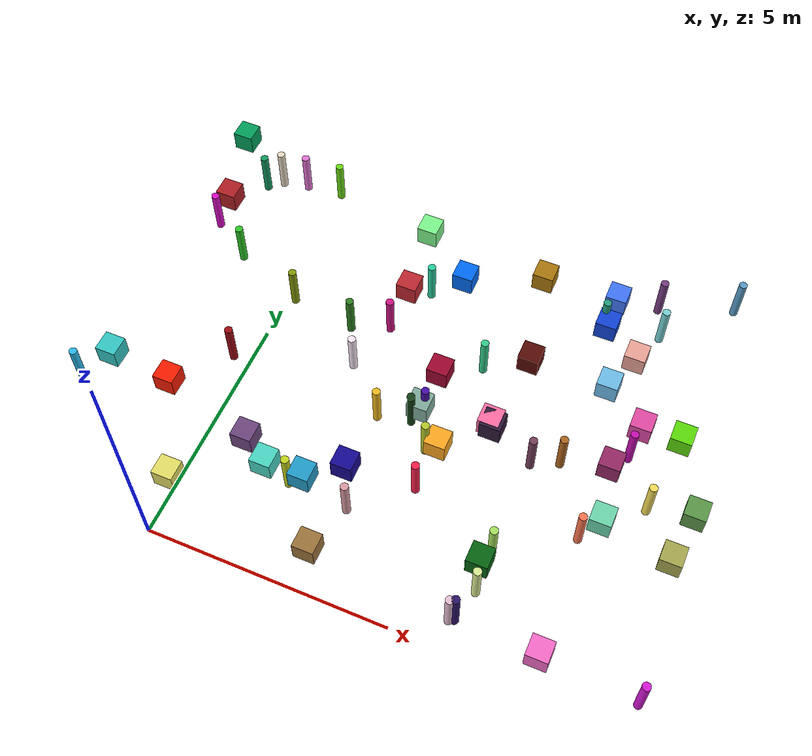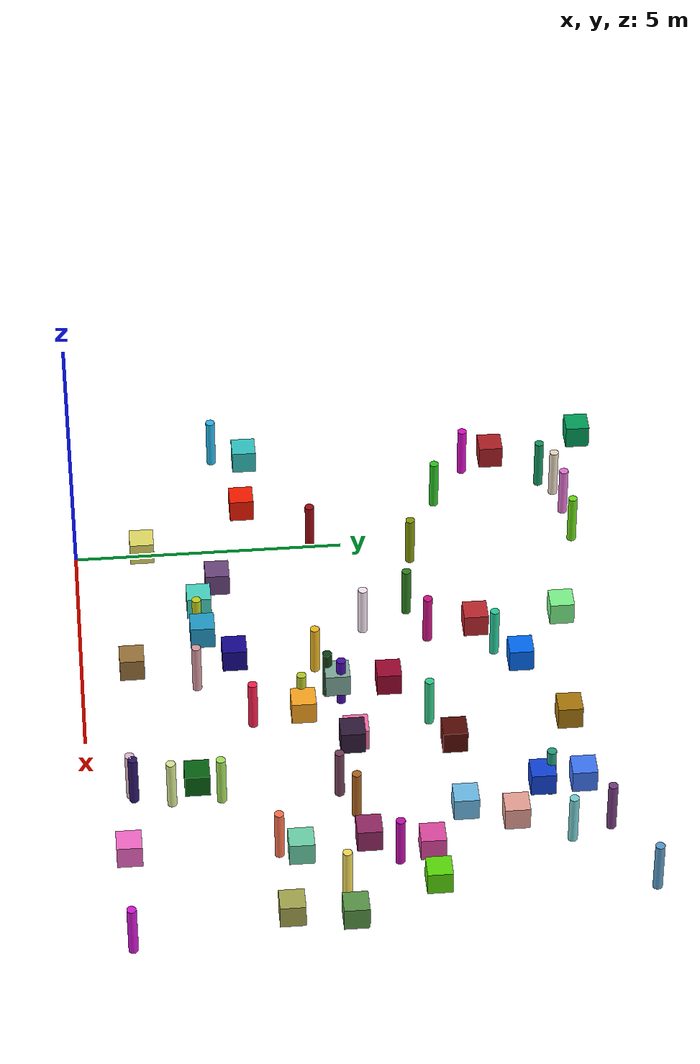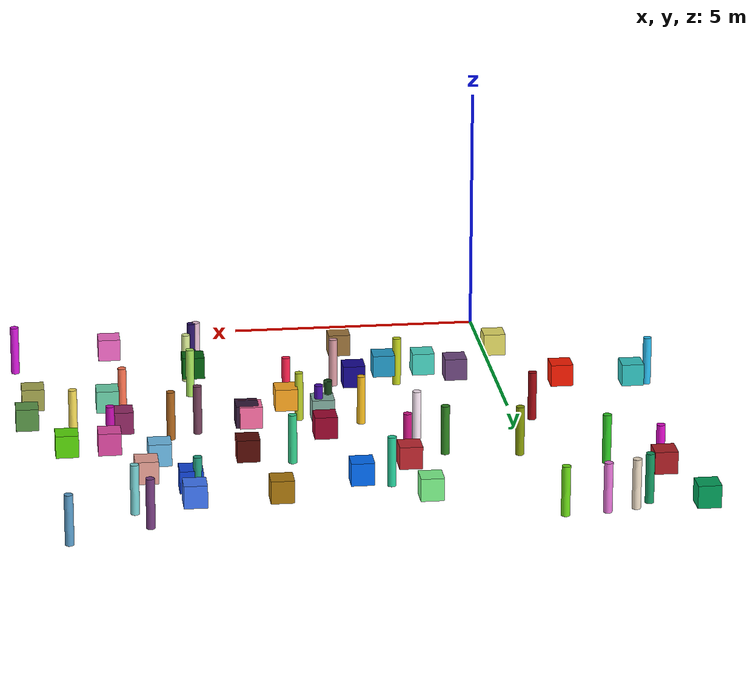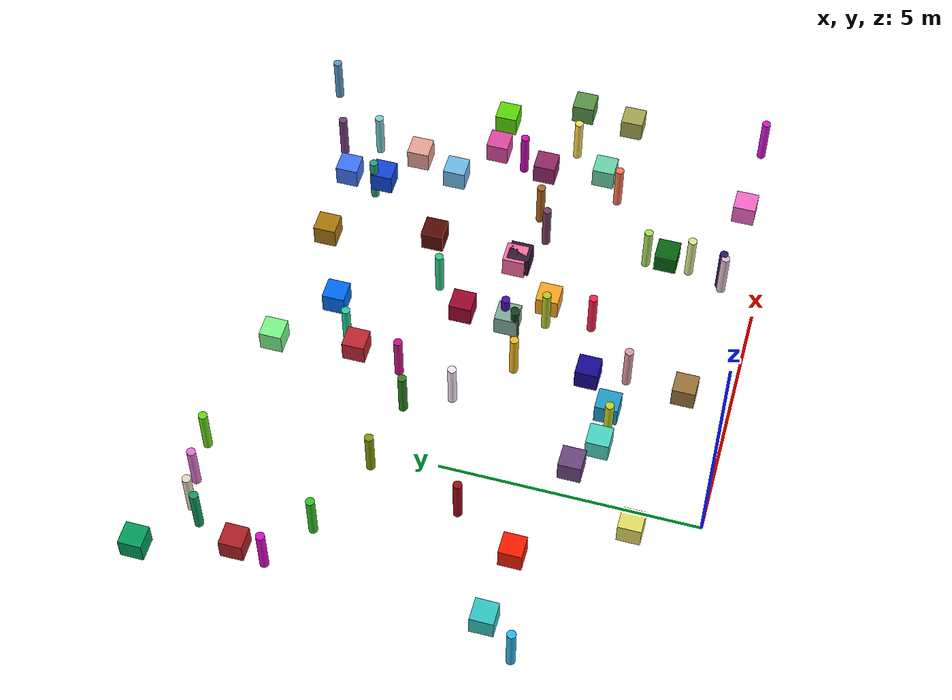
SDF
<sdf version="1.7">
 <world name="warehouse">
  <model name="ground_plane">
   <static>true</static>
   <link name="link">
    <collision name="collision">
     <geometry><plane><normal>0.0 0.0 1</normal><size>1 1</size></plane></geometry>
    </collision>
   </link>
  </model>
  <model name="unit_cylinder_0">
   <static>true</static>
   <pose>7.64 8.49 0 0 0 0</pose>
   <link name="link">
    <collision name="collision">
     <geometry><cylinder><radius>0.085000</radius><length>1.000000</length></cylinder></geometry>
    </collision>
    <visual name="visual">
     <geometry><cylinder><radius>0.085000</radius><length>1.000000</length></cylinder></geometry>
     <material>
      <ambient>0.46999343141526606 0.8260828982323868 0.8352996706723781 1</ambient>
      <diffuse>0.46999343141526606 0.8260828982323868 0.8352996706723781 1</diffuse>
      <script><uri>file://media/materials/scripts/gazebo.material</uri><name>Gazebo/RandomColor0</name></script>
     </material>
    </visual>
   </link>
  </model>
  <model name="unit_box_1">
   <static>true</static>
   <pose>7.68 4.87 0 0 0 0</pose>
   <link name="link">
    <collision name="collision">
     <geometry><box><size>0.450000 0.450000 0.450000</size></box></geometry>
    </collision>
    <visual name="visual">
     <geometry><box><size>0.450000 0.450000 0.450000</size></box></geometry>
     <material>
      <ambient>0.5787854574326788 0.1576126436969516 0.39572108881065005 1</ambient>
      <diffuse>0.5787854574326788 0.1576126436969516 0.39572108881065005 1</diffuse>
      <script><uri>file://media/materials/scripts/gazebo.material</uri><name>Gazebo/RandomColor1</name></script>
     </material>
    </visual>
   </link>
  </model>
  <model name="unit_cylinder_2">
   <static>true</static>
   <pose>7.58 3.3 0 0 0 0</pose>
   <link name="link">
    <collision name="collision">
     <geometry><cylinder><radius>0.085000</radius><length>1.000000</length></cylinder></geometry>
    </collision>
    <visual name="visual">
     <geometry><cylinder><radius>0.085000</radius><length>1.000000</length></cylinder></geometry>
     <material>
      <ambient>0.994603734721729 0.4599668836425649 0.32006689947135913 1</ambient>
      <diffuse>0.994603734721729 0.4599668836425649 0.32006689947135913 1</diffuse>
      <script><uri>file://media/materials/scripts/gazebo.material</uri><name>Gazebo/RandomColor2</name></script>
     </material>
    </visual>
   </link>
  </model>
  <model name="unit_cylinder_4">
   <static>true</static>
   <pose>-0.59 4.47 0 0 0 0</pose>
   <link name="link">
    <collision name="collision">
     <geometry><cylinder><radius>0.085000</radius><length>1.000000</length></cylinder></geometry>
    </collision>
    <visual name="visual">
     <geometry><cylinder><radius>0.085000</radius><length>1.000000</length></cylinder></geometry>
     <material>
      <ambient>0.6235357225068702 0.041976520675021445 0.07086196109194554 1</ambient>
      <diffuse>0.6235357225068702 0.041976520675021445 0.07086196109194554 1</diffuse>
      <script><uri>file://media/materials/scripts/gazebo.material</uri><name>Gazebo/RandomColor4</name></script>
     </material>
    </visual>
   </link>
  </model>
  <model name="unit_box_6">
   <static>true</static>
   <pose>7.36 7.51 0 0 0 0</pose>
   <link name="link">
    <collision name="collision">
     <geometry><box><size>0.450000 0.450000 0.450000</size></box></geometry>
    </collision>
    <visual name="visual">
     <geometry><box><size>0.450000 0.450000 0.450000</size></box></geometry>
     <material>
      <ambient>0.9200013658917384 0.6377764935082382 0.5884827738635453 1</ambient>
      <diffuse>0.9200013658917384 0.6377764935082382 0.5884827738635453 1</diffuse>
      <script><uri>file://media/materials/scripts/gazebo.material</uri><name>Gazebo/RandomColor6</name></script>
     </material>
    </visual>
   </link>
  </model>
  <model name="unit_box_7">
   <static>true</static>
   <pose>3.29 8.06 0 0 0 0</pose>
   <link name="link">
    <collision name="collision">
     <geometry><box><size>0.450000 0.450000 0.450000</size></box></geometry>
    </collision>
    <visual name="visual">
     <geometry><box><size>0.450000 0.450000 0.450000</size></box></geometry>
     <material>
      <ambient>0.0008061066065178091 0.4221810701152692 0.9668438875156476 1</ambient>
      <diffuse>0.0008061066065178091 0.4221810701152692 0.9668438875156476 1</diffuse>
      <script><uri>file://media/materials/scripts/gazebo.material</uri><name>Gazebo/RandomColor7</name></script>
     </material>
    </visual>
   </link>
  </model>
  <model name="unit_box_8">
   <static>true</static>
   <pose>-2.82 3.35 0 0 0 0</pose>
   <link name="link">
    <collision name="collision">
     <geometry><box><size>0.450000 0.450000 0.450000</size></box></geometry>
    </collision>
    <visual name="visual">
     <geometry><box><size>0.450000 0.450000 0.450000</size></box></geometry>
     <material>
      <ambient>0.19632608082391967 0.7800212030862693 0.7700812796265892 1</ambient>
      <diffuse>0.19632608082391967 0.7800212030862693 0.7700812796265892 1</diffuse>
      <script><uri>file://media/materials/scripts/gazebo.material</uri><name>Gazebo/RandomColor8</name></script>
     </material>
    </visual>
   </link>
  </model>
  <model name="unit_cylinder_8">
   <static>true</static>
   <pose>-2.58 7.6 0 0 0 0</pose>
   <link name="link">
    <collision name="collision">
     <geometry><cylinder><radius>0.085000</radius><length>1.000000</length></cylinder></geometry>
    </collision>
    <visual name="visual">
     <geometry><cylinder><radius>0.085000</radius><length>1.000000</length></cylinder></geometry>
     <material>
      <ambient>0.8731148797888116 0.05048151335118567 0.7935635113024313 1</ambient>
      <diffuse>0.8731148797888116 0.05048151335118567 0.7935635113024313 1</diffuse>
      <script><uri>file://media/materials/scripts/gazebo.material</uri><name>Gazebo/RandomColor8</name></script>
     </material>
    </visual>
   </link>
  </model>
  <model name="unit_box_9">
   <static>true</static>
   <pose>6.55 8.07 0 0 0 0</pose>
   <link name="link">
    <collision name="collision">
     <geometry><box><size>0.450000 0.450000 0.450000</size></box></geometry>
    </collision>
    <visual name="visual">
     <geometry><box><size>0.450000 0.450000 0.450000</size></box></geometry>
     <material>
      <ambient>0.06638551337313603 0.2678031365858804 0.8557967761337132 1</ambient>
      <diffuse>0.06638551337313603 0.2678031365858804 0.8557967761337132 1</diffuse>
      <script><uri>file://media/materials/scripts/gazebo.material</uri><name>Gazebo/RandomColor9</name></script>
     </material>
    </visual>
   </link>
  </model>
  <model name="unit_cylinder_12">
   <static>true</static>
   <pose>2.66 7.65 0 0 0 0</pose>
   <link name="link">
    <collision name="collision">
     <geometry><cylinder><radius>0.085000</radius><length>1.000000</length></cylinder></geometry>
    </collision>
    <visual name="visual">
     <geometry><cylinder><radius>0.085000</radius><length>1.000000</length></cylinder></geometry>
     <material>
      <ambient>0.15143648891922623 0.8175906025052687 0.6141172141436677 1</ambient>
      <diffuse>0.15143648891922623 0.8175906025052687 0.6141172141436677 1</diffuse>
      <script><uri>file://media/materials/scripts/gazebo.material</uri><name>Gazebo/RandomColor12</name></script>
     </material>
    </visual>
   </link>
  </model>
  <model name="unit_cylinder_14">
   <static>true</static>
   <pose>-3.27 2.74 0 0 0 0</pose>
   <link name="link">
    <collision name="collision">
     <geometry><cylinder><radius>0.085000</radius><length>1.000000</length></cylinder></geometry>
    </collision>
    <visual name="visual">
     <geometry><cylinder><radius>0.085000</radius><length>1.000000</length></cylinder></geometry>
     <material>
      <ambient>0.1616640995869777 0.7356496990827222 0.9365464673181627 1</ambient>
      <diffuse>0.1616640995869777 0.7356496990827222 0.9365464673181627 1</diffuse>
      <script><uri>file://media/materials/scripts/gazebo.material</uri><name>Gazebo/RandomColor14</name></script>
     </material>
    </visual>
   </link>
  </model>
  <model name="unit_box_15">
   <static>true</static>
   <pose>-1.38 3.21 0 0 0 0</pose>
   <link name="link">
    <collision name="collision">
     <geometry><box><size>0.450000 0.450000 0.450000</size></box></geometry>
    </collision>
    <visual name="visual">
     <geometry><box><size>0.450000 0.450000 0.450000</size></box></geometry>
     <material>
      <ambient>0.9789827987215421 0.10518219629356829 0.00033992939039728665 1</ambient>
      <diffuse>0.9789827987215421 0.10518219629356829 0.00033992939039728665 1</diffuse>
      <script><uri>file://media/materials/scripts/gazebo.material</uri><name>Gazebo/RandomColor15</name></script>
     </material>
    </visual>
   </link>
  </model>
  <model name="unit_cylinder_15">
   <static>true</static>
   <pose>5.9 0.76 0 0 0 0</pose>
   <link name="link">
    <collision name="collision">
     <geometry><cylinder><radius>0.085000</radius><length>1.000000</length></cylinder></geometry>
    </collision>
    <visual name="visual">
     <geometry><cylinder><radius>0.085000</radius><length>1.000000</length></cylinder></geometry>
     <material>
      <ambient>0.9063739285020391 0.7514042748669589 0.838011728663642 1</ambient>
      <diffuse>0.9063739285020391 0.7514042748669589 0.838011728663642 1</diffuse>
      <script><uri>file://media/materials/scripts/gazebo.material</uri><name>Gazebo/RandomColor15</name></script>
     </material>
    </visual>
   </link>
  </model>
  <model name="unit_cylinder_16">
   <static>true</static>
   <pose>6.15 4.48 0 0 0 0</pose>
   <link name="link">
    <collision name="collision">
     <geometry><cylinder><radius>0.085000</radius><length>1.000000</length></cylinder></geometry>
    </collision>
    <visual name="visual">
     <geometry><cylinder><radius>0.085000</radius><length>1.000000</length></cylinder></geometry>
     <material>
      <ambient>0.4622271195110065 0.2528442664038917 0.36049144175780334 1</ambient>
      <diffuse>0.4622271195110065 0.2528442664038917 0.36049144175780334 1</diffuse>
      <script><uri>file://media/materials/scripts/gazebo.material</uri><name>Gazebo/RandomColor16</name></script>
     </material>
    </visual>
   </link>
  </model>
  <model name="unit_box_18">
   <static>true</static>
   <pose>7.71 0.66 0 0 0 0</pose>
   <link name="link">
    <collision name="collision">
     <geometry><box><size>0.450000 0.450000 0.450000</size></box></geometry>
    </collision>
    <visual name="visual">
     <geometry><box><size>0.450000 0.450000 0.450000</size></box></geometry>
     <material>
      <ambient>0.9665622435585168 0.41716344496851265 0.789984054476536 1</ambient>
      <diffuse>0.9665622435585168 0.41716344496851265 0.789984054476536 1</diffuse>
      <script><uri>file://media/materials/scripts/gazebo.material</uri><name>Gazebo/RandomColor18</name></script>
     </material>
    </visual>
   </link>
  </model>
  <model name="unit_box_19">
   <static>true</static>
   <pose>-3.02 9.9 0 0 0 0</pose>
   <link name="link">
    <collision name="collision">
     <geometry><box><size>0.450000 0.450000 0.450000</size></box></geometry>
    </collision>
    <visual name="visual">
     <geometry><box><size>0.450000 0.450000 0.450000</size></box></geometry>
     <material>
      <ambient>0.004717150632328471 0.6250235168678344 0.3515729885520935 1</ambient>
      <diffuse>0.004717150632328471 0.6250235168678344 0.3515729885520935 1</diffuse>
      <script><uri>file://media/materials/scripts/gazebo.material</uri><name>Gazebo/RandomColor19</name></script>
     </material>
    </visual>
   </link>
  </model>
  <model name="unit_cylinder_19">
   <static>true</static>
   <pose>-2.09 9.05 0 0 0 0</pose>
   <link name="link">
    <collision name="collision">
     <geometry><cylinder><radius>0.085000</radius><length>1.000000</length></cylinder></geometry>
    </collision>
    <visual name="visual">
     <geometry><cylinder><radius>0.085000</radius><length>1.000000</length></cylinder></geometry>
     <material>
      <ambient>0.07983190309297217 0.6005276894350505 0.38091359060201324 1</ambient>
      <diffuse>0.07983190309297217 0.6005276894350505 0.38091359060201324 1</diffuse>
      <script><uri>file://media/materials/scripts/gazebo.material</uri><name>Gazebo/RandomColor19</name></script>
     </material>
    </visual>
   </link>
  </model>
  <model name="unit_cylinder_25">
   <static>true</static>
   <pose>1.86 5.27 0 0 0 0</pose>
   <link name="link">
    <collision name="collision">
     <geometry><cylinder><radius>0.085000</radius><length>1.000000</length></cylinder></geometry>
    </collision>
    <visual name="visual">
     <geometry><cylinder><radius>0.085000</radius><length>1.000000</length></cylinder></geometry>
     <material>
      <ambient>0.9913016831416743 0.9147238388366419 0.9715623505247444 1</ambient>
      <diffuse>0.9913016831416743 0.9147238388366419 0.9715623505247444 1</diffuse>
      <script><uri>file://media/materials/scripts/gazebo.material</uri><name>Gazebo/RandomColor25</name></script>
     </material>
    </visual>
   </link>
  </model>
  <model name="unit_cylinder_27">
   <static>true</static>
   <pose>2.2 6.45 0 0 0 0</pose>
   <link name="link">
    <collision name="collision">
     <geometry><cylinder><radius>0.085000</radius><length>1.000000</length></cylinder></geometry>
    </collision>
    <visual name="visual">
     <geometry><cylinder><radius>0.085000</radius><length>1.000000</length></cylinder></geometry>
     <material>
      <ambient>0.81939416577591 0.07705422698556097 0.5250067758038443 1</ambient>
      <diffuse>0.81939416577591 0.07705422698556097 0.5250067758038443 1</diffuse>
      <script><uri>file://media/materials/scripts/gazebo.material</uri><name>Gazebo/RandomColor27</name></script>
     </material>
    </visual>
   </link>
  </model>
  <model name="unit_box_28">
   <static>true</static>
   <pose>5.13 4.86 0 0 0 0</pose>
   <link name="link">
    <collision name="collision">
     <geometry><box><size>0.450000 0.450000 0.450000</size></box></geometry>
    </collision>
    <visual name="visual">
     <geometry><box><size>0.450000 0.450000 0.450000</size></box></geometry>
     <material>
      <ambient>0.9924946270400862 0.43210663244322833 0.649208655191276 1</ambient>
      <diffuse>0.9924946270400862 0.43210663244322833 0.649208655191276 1</diffuse>
      <script><uri>file://media/materials/scripts/gazebo.material</uri><name>Gazebo/RandomColor28</name></script>
     </material>
    </visual>
   </link>
  </model>
  <model name="unit_box_31">
   <static>true</static>
   <pose>-0.29 1.25 0 0 0 0</pose>
   <link name="link">
    <collision name="collision">
     <geometry><box><size>0.450000 0.450000 0.450000</size></box></geometry>
    </collision>
    <visual name="visual">
     <geometry><box><size>0.450000 0.450000 0.450000</size></box></geometry>
     <material>
      <ambient>0.903097803572667 0.872289222738463 0.39441704418277024 1</ambient>
      <diffuse>0.903097803572667 0.872289222738463 0.39441704418277024 1</diffuse>
      <script><uri>file://media/materials/scripts/gazebo.material</uri><name>Gazebo/RandomColor31</name></script>
     </material>
    </visual>
   </link>
  </model>
  <model name="unit_box_32">
   <static>true</static>
   <pose>3.72 5.58 0 0 0 0</pose>
   <link name="link">
    <collision name="collision">
     <geometry><box><size>0.450000 0.450000 0.450000</size></box></geometry>
    </collision>
    <visual name="visual">
     <geometry><box><size>0.450000 0.450000 0.450000</size></box></geometry>
     <material>
      <ambient>0.6157356252464026 0.023215326455299667 0.17916997867900675 1</ambient>
      <diffuse>0.6157356252464026 0.023215326455299667 0.17916997867900675 1</diffuse>
      <script><uri>file://media/materials/scripts/gazebo.material</uri><name>Gazebo/RandomColor32</name></script>
     </material>
    </visual>
   </link>
  </model>
  <model name="unit_cylinder_32">
   <static>true</static>
   <pose>2.85 4.3 0 0 0 0</pose>
   <link name="link">
    <collision name="collision">
     <geometry><cylinder><radius>0.085000</radius><length>1.000000</length></cylinder></geometry>
    </collision>
    <visual name="visual">
     <geometry><cylinder><radius>0.085000</radius><length>1.000000</length></cylinder></geometry>
     <material>
      <ambient>0.9521239968349163 0.7320744994341732 0.11916655202725757 1</ambient>
      <diffuse>0.9521239968349163 0.7320744994341732 0.11916655202725757 1</diffuse>
      <script><uri>file://media/materials/scripts/gazebo.material</uri><name>Gazebo/RandomColor32</name></script>
     </material>
    </visual>
   </link>
  </model>
  <model name="unit_cylinder_35">
   <static>true</static>
   <pose>6.16 1.48 0 0 0 0</pose>
   <link name="link">
    <collision name="collision">
     <geometry><cylinder><radius>0.085000</radius><length>1.000000</length></cylinder></geometry>
    </collision>
    <visual name="visual">
     <geometry><cylinder><radius>0.085000</radius><length>1.000000</length></cylinder></geometry>
     <material>
      <ambient>0.8573273535878304 0.9273874737908594 0.5826339409645794 1</ambient>
      <diffuse>0.8573273535878304 0.9273874737908594 0.5826339409645794 1</diffuse>
      <script><uri>file://media/materials/scripts/gazebo.material</uri><name>Gazebo/RandomColor35</name></script>
     </material>
    </visual>
   </link>
  </model>
  <model name="unit_cylinder_36">
   <static>true</static>
   <pose>1.86 2.18 0 0 0 0</pose>
   <link name="link">
    <collision name="collision">
     <geometry><cylinder><radius>0.085000</radius><length>1.000000</length></cylinder></geometry>
    </collision>
    <visual name="visual">
     <geometry><cylinder><radius>0.085000</radius><length>1.000000</length></cylinder></geometry>
     <material>
      <ambient>0.7715019080482511 0.8372282749579514 0.11446092613466696 1</ambient>
      <diffuse>0.7715019080482511 0.8372282749579514 0.11446092613466696 1</diffuse>
      <script><uri>file://media/materials/scripts/gazebo.material</uri><name>Gazebo/RandomColor36</name></script>
     </material>
    </visual>
   </link>
  </model>
  <model name="unit_box_39">
   <static>true</static>
   <pose>7.05 6.64 0 0 0 0</pose>
   <link name="link">
    <collision name="collision">
     <geometry><box><size>0.450000 0.450000 0.450000</size></box></geometry>
    </collision>
    <visual name="visual">
     <geometry><box><size>0.450000 0.450000 0.450000</size></box></geometry>
     <material>
      <ambient>0.43041689157387963 0.740574233110822 0.9175106958173416 1</ambient>
      <diffuse>0.43041689157387963 0.740574233110822 0.9175106958173416 1</diffuse>
      <script><uri>file://media/materials/scripts/gazebo.material</uri><name>Gazebo/RandomColor39</name></script>
     </material>
    </visual>
   </link>
  </model>
  <model name="unit_cylinder_39">
   <static>true</static>
   <pose>9.66 0.63 0 0 0 0</pose>
   <link name="link">
    <collision name="collision">
     <geometry><cylinder><radius>0.085000</radius><length>1.000000</length></cylinder></geometry>
    </collision>
    <visual name="visual">
     <geometry><cylinder><radius>0.085000</radius><length>1.000000</length></cylinder></geometry>
     <material>
      <ambient>0.8421057203004303 0.09712622279821559 0.8561255720082507 1</ambient>
      <diffuse>0.8421057203004303 0.09712622279821559 0.8561255720082507 1</diffuse>
      <script><uri>file://media/materials/scripts/gazebo.material</uri><name>Gazebo/RandomColor39</name></script>
     </material>
    </visual>
   </link>
  </model>
  <model name="unit_box_40">
   <static>true</static>
   <pose>8.81 5.99 0 0 0 0</pose>
   <link name="link">
    <collision name="collision">
     <geometry><box><size>0.450000 0.450000 0.450000</size></box></geometry>
    </collision>
    <visual name="visual">
     <geometry><box><size>0.450000 0.450000 0.450000</size></box></geometry>
     <material>
      <ambient>0.35340262437832104 0.8570995377256371 0.03485788274739676 1</ambient>
      <diffuse>0.35340262437832104 0.8570995377256371 0.03485788274739676 1</diffuse>
      <script><uri>file://media/materials/scripts/gazebo.material</uri><name>Gazebo/RandomColor40</name></script>
     </material>
    </visual>
   </link>
  </model>
  <model name="unit_box_41">
   <static>true</static>
   <pose>2.93 0.92 0 0 0 0</pose>
   <link name="link">
    <collision name="collision">
     <geometry><box><size>0.450000 0.450000 0.450000</size></box></geometry>
    </collision>
    <visual name="visual">
     <geometry><box><size>0.450000 0.450000 0.450000</size></box></geometry>
     <material>
      <ambient>0.6125183021814501 0.45390889046797667 0.23062278917861345 1</ambient>
      <diffuse>0.6125183021814501 0.45390889046797667 0.23062278917861345 1</diffuse>
      <script><uri>file://media/materials/scripts/gazebo.material</uri><name>Gazebo/RandomColor41</name></script>
     </material>
    </visual>
   </link>
  </model>
  <model name="unit_cylinder_41">
   <static>true</static>
   <pose>4.43 6.26 0 0 0 0</pose>
   <link name="link">
    <collision name="collision">
     <geometry><cylinder><radius>0.085000</radius><length>1.000000</length></cylinder></geometry>
    </collision>
    <visual name="visual">
     <geometry><cylinder><radius>0.085000</radius><length>1.000000</length></cylinder></geometry>
     <material>
      <ambient>0.20337211083979623 0.8062757376106867 0.54790493930172 1</ambient>
      <diffuse>0.20337211083979623 0.8062757376106867 0.54790493930172 1</diffuse>
      <script><uri>file://media/materials/scripts/gazebo.material</uri><name>Gazebo/RandomColor41</name></script>
     </material>
    </visual>
   </link>
  </model>
  <model name="unit_box_44">
   <static>true</static>
   <pose>4.34 3.97 0 0 0 0</pose>
   <link name="link">
    <collision name="collision">
     <geometry><box><size>0.450000 0.450000 0.450000</size></box></geometry>
    </collision>
    <visual name="visual">
     <geometry><box><size>0.450000 0.450000 0.450000</size></box></geometry>
     <material>
      <ambient>0.9938810974071471 0.6578962700450941 0.12727185080217418 1</ambient>
      <diffuse>0.9938810974071471 0.6578962700450941 0.12727185080217418 1</diffuse>
      <script><uri>file://media/materials/scripts/gazebo.material</uri><name>Gazebo/RandomColor44</name></script>
     </material>
    </visual>
   </link>
  </model>
  <model name="unit_cylinder_45">
   <static>true</static>
   <pose>4.07 3.96 0 0 0 0</pose>
   <link name="link">
    <collision name="collision">
     <geometry><cylinder><radius>0.085000</radius><length>1.000000</length></cylinder></geometry>
    </collision>
    <visual name="visual">
     <geometry><cylinder><radius>0.085000</radius><length>1.000000</length></cylinder></geometry>
     <material>
      <ambient>0.7260579137272414 0.7986161869372315 0.15849874689629084 1</ambient>
      <diffuse>0.7260579137272414 0.7986161869372315 0.15849874689629084 1</diffuse>
      <script><uri>file://media/materials/scripts/gazebo.material</uri><name>Gazebo/RandomColor45</name></script>
     </material>
    </visual>
   </link>
  </model>
  <model name="unit_cylinder_46">
   <static>true</static>
   <pose>6.14 2.37 0 0 0 0</pose>
   <link name="link">
    <collision name="collision">
     <geometry><cylinder><radius>0.085000</radius><length>1.000000</length></cylinder></geometry>
    </collision>
    <visual name="visual">
     <geometry><cylinder><radius>0.085000</radius><length>1.000000</length></cylinder></geometry>
     <material>
      <ambient>0.6554024750289498 0.8946992152742206 0.3615197141175006 1</ambient>
      <diffuse>0.6554024750289498 0.8946992152742206 0.3615197141175006 1</diffuse>
      <script><uri>file://media/materials/scripts/gazebo.material</uri><name>Gazebo/RandomColor46</name></script>
     </material>
    </visual>
   </link>
  </model>
  <model name="unit_box_47">
   <static>true</static>
   <pose>4.89 8.76 0 0 0 0</pose>
   <link name="link">
    <collision name="collision">
     <geometry><box><size>0.450000 0.450000 0.450000</size></box></geometry>
    </collision>
    <visual name="visual">
     <geometry><box><size>0.450000 0.450000 0.450000</size></box></geometry>
     <material>
      <ambient>0.6725950946140186 0.4716992408723011 0.04879351248057717 1</ambient>
      <diffuse>0.6725950946140186 0.4716992408723011 0.04879351248057717 1</diffuse>
      <script><uri>file://media/materials/scripts/gazebo.material</uri><name>Gazebo/RandomColor47</name></script>
     </material>
    </visual>
   </link>
  </model>
  <model name="unit_cylinder_47">
   <static>true</static>
   <pose>8.93 9.82 0 0 0 0</pose>
   <link name="link">
    <collision name="collision">
     <geometry><cylinder><radius>0.085000</radius><length>1.000000</length></cylinder></geometry>
    </collision>
    <visual name="visual">
     <geometry><cylinder><radius>0.085000</radius><length>1.000000</length></cylinder></geometry>
     <material>
      <ambient>0.35371907494639687 0.616936816883898 0.7911689863771137 1</ambient>
      <diffuse>0.35371907494639687 0.616936816883898 0.7911689863771137 1</diffuse>
      <script><uri>file://media/materials/scripts/gazebo.material</uri><name>Gazebo/RandomColor47</name></script>
     </material>
    </visual>
   </link>
  </model>
  <model name="unit_box_48">
   <static>true</static>
   <pose>-2.55 8.14 0 0 0 0</pose>
   <link name="link">
    <collision name="collision">
     <geometry><box><size>0.450000 0.450000 0.450000</size></box></geometry>
    </collision>
    <visual name="visual">
     <geometry><box><size>0.450000 0.450000 0.450000</size></box></geometry>
     <material>
      <ambient>0.6880975314106589 0.11872456370108564 0.14438640145275317 1</ambient>
      <diffuse>0.6880975314106589 0.11872456370108564 0.14438640145275317 1</diffuse>
      <script><uri>file://media/materials/scripts/gazebo.material</uri><name>Gazebo/RandomColor48</name></script>
     </material>
    </visual>
   </link>
  </model>
  <model name="unit_box_51">
   <static>true</static>
   <pose>3.67 4.64 0 0 0 0</pose>
   <link name="link">
    <collision name="collision">
     <geometry><box><size>0.450000 0.450000 0.450000</size></box></geometry>
    </collision>
    <visual name="visual">
     <geometry><box><size>0.450000 0.450000 0.450000</size></box></geometry>
     <material>
      <ambient>0.5051263716753369 0.6781182307095606 0.6186056607038337 1</ambient>
      <diffuse>0.5051263716753369 0.6781182307095606 0.6186056607038337 1</diffuse>
      <script><uri>file://media/materials/scripts/gazebo.material</uri><name>Gazebo/RandomColor51</name></script>
     </material>
    </visual>
   </link>
  </model>
  <model name="unit_cylinder_51">
   <static>true</static>
   <pose>8.62 4.41 0 0 0 0</pose>
   <link name="link">
    <collision name="collision">
     <geometry><cylinder><radius>0.085000</radius><length>1.000000</length></cylinder></geometry>
    </collision>
    <visual name="visual">
     <geometry><cylinder><radius>0.085000</radius><length>1.000000</length></cylinder></geometry>
     <material>
      <ambient>0.9644343755918187 0.866007959125253 0.3455983508901731 1</ambient>
      <diffuse>0.9644343755918187 0.866007959125253 0.3455983508901731 1</diffuse>
      <script><uri>file://media/materials/scripts/gazebo.material</uri><name>Gazebo/RandomColor51</name></script>
     </material>
    </visual>
   </link>
  </model>
  <model name="unit_cylinder_52">
   <static>true</static>
   <pose>7.39 9.21 0 0 0 0</pose>
   <link name="link">
    <collision name="collision">
     <geometry><cylinder><radius>0.085000</radius><length>1.000000</length></cylinder></geometry>
    </collision>
    <visual name="visual">
     <geometry><cylinder><radius>0.085000</radius><length>1.000000</length></cylinder></geometry>
     <material>
      <ambient>0.4671992997125657 0.23824386028901645 0.5050991100475837 1</ambient>
      <diffuse>0.4671992997125657 0.23824386028901645 0.5050991100475837 1</diffuse>
      <script><uri>file://media/materials/scripts/gazebo.material</uri><name>Gazebo/RandomColor52</name></script>
     </material>
    </visual>
   </link>
  </model>
  <model name="unit_box_54">
   <static>true</static>
   <pose>2.84 2.81 0 0 0 0</pose>
   <link name="link">
    <collision name="collision">
     <geometry><box><size>0.450000 0.450000 0.450000</size></box></geometry>
    </collision>
    <visual name="visual">
     <geometry><box><size>0.450000 0.450000 0.450000</size></box></geometry>
     <material>
      <ambient>0.08465337009974994 0.029762546373700793 0.5687786597065388 1</ambient>
      <diffuse>0.08465337009974994 0.029762546373700793 0.5687786597065388 1</diffuse>
      <script><uri>file://media/materials/scripts/gazebo.material</uri><name>Gazebo/RandomColor54</name></script>
     </material>
    </visual>
   </link>
  </model>
  <model name="unit_box_55">
   <static>true</static>
   <pose>9.38 3.39 0 0 0 0</pose>
   <link name="link">
    <collision name="collision">
     <geometry><box><size>0.450000 0.450000 0.450000</size></box></geometry>
    </collision>
    <visual name="visual">
     <geometry><box><size>0.450000 0.450000 0.450000</size></box></geometry>
     <material>
      <ambient>0.6527666301359926 0.6561567484078137 0.30914424413899944 1</ambient>
      <diffuse>0.6527666301359926 0.6561567484078137 0.30914424413899944 1</diffuse>
      <script><uri>file://media/materials/scripts/gazebo.material</uri><name>Gazebo/RandomColor55</name></script>
     </material>
    </visual>
   </link>
  </model>
  <model name="unit_cylinder_55">
   <static>true</static>
   <pose>6.7 4.74 0 0 0 0</pose>
   <link name="link">
    <collision name="collision">
     <geometry><cylinder><radius>0.085000</radius><length>1.000000</length></cylinder></geometry>
    </collision>
    <visual name="visual">
     <geometry><cylinder><radius>0.085000</radius><length>1.000000</length></cylinder></geometry>
     <material>
      <ambient>0.6897535065462764 0.40196640105802306 0.11778696926784038 1</ambient>
      <diffuse>0.6897535065462764 0.40196640105802306 0.11778696926784038 1</diffuse>
      <script><uri>file://media/materials/scripts/gazebo.material</uri><name>Gazebo/RandomColor55</name></script>
     </material>
    </visual>
   </link>
  </model>
  <model name="unit_box_58">
   <static>true</static>
   <pose>6.05 1.94 0 0 0 0</pose>
   <link name="link">
    <collision name="collision">
     <geometry><box><size>0.450000 0.450000 0.450000</size></box></geometry>
    </collision>
    <visual name="visual">
     <geometry><box><size>0.450000 0.450000 0.450000</size></box></geometry>
     <material>
      <ambient>0.021729052193615206 0.39225309724229884 0.06524202127787637 1</ambient>
      <diffuse>0.021729052193615206 0.39225309724229884 0.06524202127787637 1</diffuse>
      <script><uri>file://media/materials/scripts/gazebo.material</uri><name>Gazebo/RandomColor58</name></script>
     </material>
    </visual>
   </link>
  </model>
  <model name="unit_cylinder_58">
   <static>true</static>
   <pose>-0.04 6.34 0 0 0 0</pose>
   <link name="link">
    <collision name="collision">
     <geometry><cylinder><radius>0.085000</radius><length>1.000000</length></cylinder></geometry>
    </collision>
    <visual name="visual">
     <geometry><cylinder><radius>0.085000</radius><length>1.000000</length></cylinder></geometry>
     <material>
      <ambient>0.5272082868079613 0.6034765165581214 0.0359210006849815 1</ambient>
      <diffuse>0.5272082868079613 0.6034765165581214 0.0359210006849815 1</diffuse>
      <script><uri>file://media/materials/scripts/gazebo.material</uri><name>Gazebo/RandomColor58</name></script>
     </material>
    </visual>
   </link>
  </model>
  <model name="unit_box_59">
   <static>true</static>
   <pose>7.98 5.96 0 0 0 0</pose>
   <link name="link">
    <collision name="collision">
     <geometry><box><size>0.450000 0.450000 0.450000</size></box></geometry>
    </collision>
    <visual name="visual">
     <geometry><box><size>0.450000 0.450000 0.450000</size></box></geometry>
     <material>
      <ambient>0.8821894445095979 0.2850782038392836 0.6410121074538468 1</ambient>
      <diffuse>0.8821894445095979 0.2850782038392836 0.6410121074538468 1</diffuse>
      <script><uri>file://media/materials/scripts/gazebo.material</uri><name>Gazebo/RandomColor59</name></script>
     </material>
    </visual>
   </link>
  </model>
  <model name="unit_box_60">
   <static>true</static>
   <pose>7.9 3.66 0 0 0 0</pose>
   <link name="link">
    <collision name="collision">
     <geometry><box><size>0.450000 0.450000 0.450000</size></box></geometry>
    </collision>
    <visual name="visual">
     <geometry><box><size>0.450000 0.450000 0.450000</size></box></geometry>
     <material>
      <ambient>0.42269993102790715 0.8356011854969039 0.673584842058439 1</ambient>
      <diffuse>0.42269993102790715 0.8356011854969039 0.673584842058439 1</diffuse>
      <script><uri>file://media/materials/scripts/gazebo.material</uri><name>Gazebo/RandomColor60</name></script>
     </material>
    </visual>
   </link>
  </model>
  <model name="unit_cylinder_60">
   <static>true</static>
   <pose>-1.22 9.42 0 0 0 0</pose>
   <link name="link">
    <collision name="collision">
     <geometry><cylinder><radius>0.085000</radius><length>1.000000</length></cylinder></geometry>
    </collision>
    <visual name="visual">
     <geometry><cylinder><radius>0.085000</radius><length>1.000000</length></cylinder></geometry>
     <material>
      <ambient>0.9007834875000408 0.45546792919837986 0.8432040883690435 1</ambient>
      <diffuse>0.9007834875000408 0.45546792919837986 0.8432040883690435 1</diffuse>
      <script><uri>file://media/materials/scripts/gazebo.material</uri><name>Gazebo/RandomColor60</name></script>
     </material>
    </visual>
   </link>
  </model>
  <model name="unit_box_62">
   <static>true</static>
   <pose>0.72 2.62 0 0 0 0</pose>
   <link name="link">
    <collision name="collision">
     <geometry><box><size>0.450000 0.450000 0.450000</size></box></geometry>
    </collision>
    <visual name="visual">
     <geometry><box><size>0.450000 0.450000 0.450000</size></box></geometry>
     <material>
      <ambient>0.43023623417521406 0.27468449864883504 0.49692396776836634 1</ambient>
      <diffuse>0.43023623417521406 0.27468449864883504 0.49692396776836634 1</diffuse>
      <script><uri>file://media/materials/scripts/gazebo.material</uri><name>Gazebo/RandomColor62</name></script>
     </material>
    </visual>
   </link>
  </model>
  <model name="unit_cylinder_62">
   <static>true</static>
   <pose>6.0 0.81 0 0 0 0</pose>
   <link name="link">
    <collision name="collision">
     <geometry><cylinder><radius>0.085000</radius><length>1.000000</length></cylinder></geometry>
    </collision>
    <visual name="visual">
     <geometry><cylinder><radius>0.085000</radius><length>1.000000</length></cylinder></geometry>
     <material>
      <ambient>0.17943609886371614 0.08415580044884063 0.42135799308863997 1</ambient>
      <diffuse>0.17943609886371614 0.08415580044884063 0.42135799308863997 1</diffuse>
      <script><uri>file://media/materials/scripts/gazebo.material</uri><name>Gazebo/RandomColor62</name></script>
     </material>
    </visual>
   </link>
  </model>
  <model name="unit_box_63">
   <static>true</static>
   <pose>2.16 2.26 0 0 0 0</pose>
   <link name="link">
    <collision name="collision">
     <geometry><box><size>0.450000 0.450000 0.450000</size></box></geometry>
    </collision>
    <visual name="visual">
     <geometry><box><size>0.450000 0.450000 0.450000</size></box></geometry>
     <material>
      <ambient>0.13502148804699043 0.6153904268236263 0.7944160980487711 1</ambient>
      <diffuse>0.13502148804699043 0.6153904268236263 0.7944160980487711 1</diffuse>
      <script><uri>file://media/materials/scripts/gazebo.material</uri><name>Gazebo/RandomColor63</name></script>
     </material>
    </visual>
   </link>
  </model>
  <model name="unit_box_68">
   <static>true</static>
   <pose>9.53 4.48 0 0 0 0</pose>
   <link name="link">
    <collision name="collision">
     <geometry><box><size>0.450000 0.450000 0.450000</size></box></geometry>
    </collision>
    <visual name="visual">
     <geometry><box><size>0.450000 0.450000 0.450000</size></box></geometry>
     <material>
      <ambient>0.3488427398388443 0.58769090942068 0.2780055862542232 1</ambient>
      <diffuse>0.3488427398388443 0.58769090942068 0.2780055862542232 1</diffuse>
      <script><uri>file://media/materials/scripts/gazebo.material</uri><name>Gazebo/RandomColor68</name></script>
     </material>
    </visual>
   </link>
  </model>
  <model name="unit_cylinder_68">
   <static>true</static>
   <pose>1.41 6.13 0 0 0 0</pose>
   <link name="link">
    <collision name="collision">
     <geometry><cylinder><radius>0.085000</radius><length>1.000000</length></cylinder></geometry>
    </collision>
    <visual name="visual">
     <geometry><cylinder><radius>0.085000</radius><length>1.000000</length></cylinder></geometry>
     <material>
      <ambient>0.179103407257454 0.5081917926621724 0.1258931175945185 1</ambient>
      <diffuse>0.179103407257454 0.5081917926621724 0.1258931175945185 1</diffuse>
      <script><uri>file://media/materials/scripts/gazebo.material</uri><name>Gazebo/RandomColor68</name></script>
     </material>
    </visual>
   </link>
  </model>
  <model name="unit_cylinder_70">
   <static>true</static>
   <pose>3.75 4.71 0 0 0 0</pose>
   <link name="link">
    <collision name="collision">
     <geometry><cylinder><radius>0.085000</radius><length>1.000000</length></cylinder></geometry>
    </collision>
    <visual name="visual">
     <geometry><cylinder><radius>0.085000</radius><length>1.000000</length></cylinder></geometry>
     <material>
      <ambient>0.2811113883035793 0.04557332150385318 0.6653224203505939 1</ambient>
      <diffuse>0.2811113883035793 0.04557332150385318 0.6653224203505939 1</diffuse>
      <script><uri>file://media/materials/scripts/gazebo.material</uri><name>Gazebo/RandomColor70</name></script>
     </material>
    </visual>
   </link>
  </model>
  <model name="unit_box_71">
   <static>true</static>
   <pose>6.53 8.81 0 0 0 0</pose>
   <link name="link">
    <collision name="collision">
     <geometry><box><size>0.450000 0.450000 0.450000</size></box></geometry>
    </collision>
    <visual name="visual">
     <geometry><box><size>0.450000 0.450000 0.450000</size></box></geometry>
     <material>
      <ambient>0.2468680094881638 0.46591287573842755 0.9713863652837011 1</ambient>
      <diffuse>0.2468680094881638 0.46591287573842755 0.9713863652837011 1</diffuse>
      <script><uri>file://media/materials/scripts/gazebo.material</uri><name>Gazebo/RandomColor71</name></script>
     </material>
    </visual>
   </link>
  </model>
  <model name="unit_box_72">
   <static>true</static>
   <pose>5.2 4.79 0 0 0 0</pose>
   <link name="link">
    <collision name="collision">
     <geometry><box><size>0.450000 0.450000 0.450000</size></box></geometry>
    </collision>
    <visual name="visual">
     <geometry><box><size>0.450000 0.450000 0.450000</size></box></geometry>
     <material>
      <ambient>0.1917153647406613 0.09825220032354531 0.22205818738773075 1</ambient>
      <diffuse>0.1917153647406613 0.09825220032354531 0.22205818738773075 1</diffuse>
      <script><uri>file://media/materials/scripts/gazebo.material</uri><name>Gazebo/RandomColor72</name></script>
     </material>
    </visual>
   </link>
  </model>
  <model name="unit_box_74">
   <static>true</static>
   <pose>2.08 8.96 0 0 0 0</pose>
   <link name="link">
    <collision name="collision">
     <geometry><box><size>0.450000 0.450000 0.450000</size></box></geometry>
    </collision>
    <visual name="visual">
     <geometry><box><size>0.450000 0.450000 0.450000</size></box></geometry>
     <material>
      <ambient>0.49094893834623676 0.9698999306935264 0.5470314569430275 1</ambient>
      <diffuse>0.49094893834623676 0.9698999306935264 0.5470314569430275 1</diffuse>
      <script><uri>file://media/materials/scripts/gazebo.material</uri><name>Gazebo/RandomColor74</name></script>
     </material>
    </visual>
   </link>
  </model>
  <model name="unit_cylinder_74">
   <static>true</static>
   <pose>7.93 5.4 0 0 0 0</pose>
   <link name="link">
    <collision name="collision">
     <geometry><cylinder><radius>0.085000</radius><length>1.000000</length></cylinder></geometry>
    </collision>
    <visual name="visual">
     <geometry><cylinder><radius>0.085000</radius><length>1.000000</length></cylinder></geometry>
     <material>
      <ambient>0.7755724437395348 0.050297508427310955 0.6920134130047348 1</ambient>
      <diffuse>0.7755724437395348 0.050297508427310955 0.6920134130047348 1</diffuse>
      <script><uri>file://media/materials/scripts/gazebo.material</uri><name>Gazebo/RandomColor74</name></script>
     </material>
    </visual>
   </link>
  </model>
  <model name="unit_box_75">
   <static>true</static>
   <pose>5.34 6.62 0 0 0 0</pose>
   <link name="link">
    <collision name="collision">
     <geometry><box><size>0.450000 0.450000 0.450000</size></box></geometry>
    </collision>
    <visual name="visual">
     <geometry><box><size>0.450000 0.450000 0.450000</size></box></geometry>
     <material>
      <ambient>0.3382191370872608 0.04246828715524642 0.025590669551367684 1</ambient>
      <diffuse>0.3382191370872608 0.04246828715524642 0.025590669551367684 1</diffuse>
      <script><uri>file://media/materials/scripts/gazebo.material</uri><name>Gazebo/RandomColor75</name></script>
     </material>
    </visual>
   </link>
  </model>
  <model name="unit_cylinder_77">
   <static>true</static>
   <pose>-1.79 9.3 0 0 0 0</pose>
   <link name="link">
    <collision name="collision">
     <geometry><cylinder><radius>0.085000</radius><length>1.000000</length></cylinder></geometry>
    </collision>
    <visual name="visual">
     <geometry><cylinder><radius>0.085000</radius><length>1.000000</length></cylinder></geometry>
     <material>
      <ambient>0.9311101134735325 0.8645641292148896 0.7743176391513212 1</ambient>
      <diffuse>0.9311101134735325 0.8645641292148896 0.7743176391513212 1</diffuse>
      <script><uri>file://media/materials/scripts/gazebo.material</uri><name>Gazebo/RandomColor77</name></script>
     </material>
    </visual>
   </link>
  </model>
  <model name="unit_cylinder_83">
   <static>true</static>
   <pose>4.24 3.06 0 0 0 0</pose>
   <link name="link">
    <collision name="collision">
     <geometry><cylinder><radius>0.085000</radius><length>1.000000</length></cylinder></geometry>
    </collision>
    <visual name="visual">
     <geometry><cylinder><radius>0.085000</radius><length>1.000000</length></cylinder></geometry>
     <material>
      <ambient>0.9917298434209169 0.1260350980444277 0.3061461970790309 1</ambient>
      <diffuse>0.9917298434209169 0.1260350980444277 0.3061461970790309 1</diffuse>
      <script><uri>file://media/materials/scripts/gazebo.material</uri><name>Gazebo/RandomColor83</name></script>
     </material>
    </visual>
   </link>
  </model>
  <model name="unit_box_87">
   <static>true</static>
   <pose>2.27 7.33 0 0 0 0</pose>
   <link name="link">
    <collision name="collision">
     <geometry><box><size>0.450000 0.450000 0.450000</size></box></geometry>
    </collision>
    <visual name="visual">
     <geometry><box><size>0.450000 0.450000 0.450000</size></box></geometry>
     <material>
      <ambient>0.7509777110104595 0.15069965869826962 0.1848167626682683 1</ambient>
      <diffuse>0.7509777110104595 0.15069965869826962 0.1848167626682683 1</diffuse>
      <script><uri>file://media/materials/scripts/gazebo.material</uri><name>Gazebo/RandomColor87</name></script>
     </material>
    </visual>
   </link>
  </model>
  <model name="unit_cylinder_88">
   <static>true</static>
   <pose>3.54 4.47 0 0 0 0</pose>
   <link name="link">
    <collision name="collision">
     <geometry><cylinder><radius>0.085000</radius><length>1.000000</length></cylinder></geometry>
    </collision>
    <visual name="visual">
     <geometry><cylinder><radius>0.085000</radius><length>1.000000</length></cylinder></geometry>
     <material>
      <ambient>0.07212904572379686 0.24681301436023706 0.08366450369669642 1</ambient>
      <diffuse>0.07212904572379686 0.24681301436023706 0.08366450369669642 1</diffuse>
      <script><uri>file://media/materials/scripts/gazebo.material</uri><name>Gazebo/RandomColor88</name></script>
     </material>
    </visual>
   </link>
  </model>
  <model name="unit_cylinder_90">
   <static>true</static>
   <pose>-0.4 9.49 0 0 0 0</pose>
   <link name="link">
    <collision name="collision">
     <geometry><cylinder><radius>0.085000</radius><length>1.000000</length></cylinder></geometry>
    </collision>
    <visual name="visual">
     <geometry><cylinder><radius>0.085000</radius><length>1.000000</length></cylinder></geometry>
     <material>
      <ambient>0.4204902972144189 0.8607643501618124 0.08856132733678446 1</ambient>
      <diffuse>0.4204902972144189 0.8607643501618124 0.08856132733678446 1</diffuse>
      <script><uri>file://media/materials/scripts/gazebo.material</uri><name>Gazebo/RandomColor90</name></script>
     </material>
    </visual>
   </link>
  </model>
  <model name="unit_cylinder_91">
   <static>true</static>
   <pose>-1.65 6.96 0 0 0 0</pose>
   <link name="link">
    <collision name="collision">
     <geometry><cylinder><radius>0.085000</radius><length>1.000000</length></cylinder></geometry>
    </collision>
    <visual name="visual">
     <geometry><cylinder><radius>0.085000</radius><length>1.000000</length></cylinder></geometry>
     <material>
      <ambient>0.17907720828642892 0.7877694063743439 0.14342478492962196 1</ambient>
      <diffuse>0.17907720828642892 0.7877694063743439 0.14342478492962196 1</diffuse>
      <script><uri>file://media/materials/scripts/gazebo.material</uri><name>Gazebo/RandomColor91</name></script>
     </material>
    </visual>
   </link>
  </model>
  <model name="unit_box_95">
   <static>true</static>
   <pose>1.34 2.24 0 0 0 0</pose>
   <link name="link">
    <collision name="collision">
     <geometry><box><size>0.450000 0.450000 0.450000</size></box></geometry>
    </collision>
    <visual name="visual">
     <geometry><box><size>0.450000 0.450000 0.450000</size></box></geometry>
     <material>
      <ambient>0.286640200796502 0.8433155145760411 0.7685337671878281 1</ambient>
      <diffuse>0.286640200796502 0.8433155145760411 0.7685337671878281 1</diffuse>
      <script><uri>file://media/materials/scripts/gazebo.material</uri><name>Gazebo/RandomColor95</name></script>
     </material>
    </visual>
   </link>
  </model>
  <model name="unit_cylinder_95">
   <static>true</static>
   <pose>3.17 2.1 0 0 0 0</pose>
   <link name="link">
    <collision name="collision">
     <geometry><cylinder><radius>0.085000</radius><length>1.000000</length></cylinder></geometry>
    </collision>
    <visual name="visual">
     <geometry><cylinder><radius>0.085000</radius><length>1.000000</length></cylinder></geometry>
     <material>
      <ambient>0.8594018280104666 0.6133376349387832 0.6435634721979476 1</ambient>
      <diffuse>0.8594018280104666 0.6133376349387832 0.6435634721979476 1</diffuse>
      <script><uri>file://media/materials/scripts/gazebo.material</uri><name>Gazebo/RandomColor95</name></script>
     </material>
    </visual>
   </link>
  </model>
  <model name="unit_cylinder_98">
   <static>true</static>
   <pose>6.43 8.24 0 0 0 0</pose>
   <link name="link">
    <collision name="collision">
     <geometry><cylinder><radius>0.085000</radius><length>1.000000</length></cylinder></geometry>
    </collision>
    <visual name="visual">
     <geometry><cylinder><radius>0.085000</radius><length>1.000000</length></cylinder></geometry>
     <material>
      <ambient>0.13539202862793542 0.6317105910050668 0.5078784203561767 1</ambient>
      <diffuse>0.13539202862793542 0.6317105910050668 0.5078784203561767 1</diffuse>
      <script><uri>file://media/materials/scripts/gazebo.material</uri><name>Gazebo/RandomColor98</name></script>
     </material>
    </visual>
   </link>
  </model>
 </world>
</sdf>
